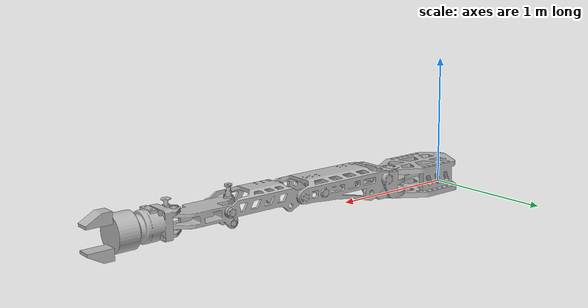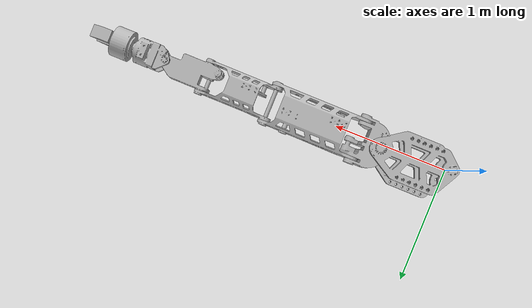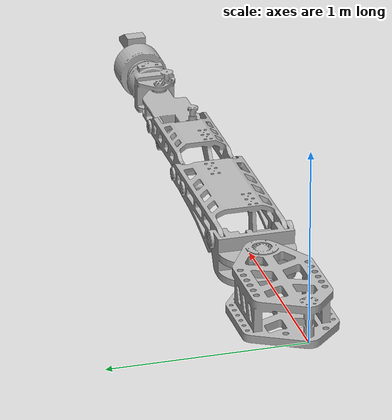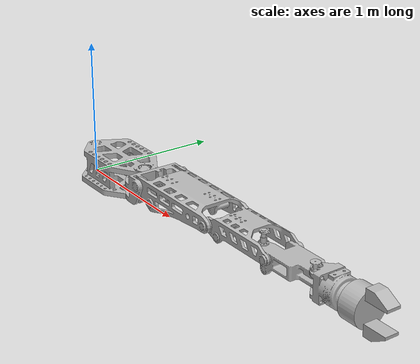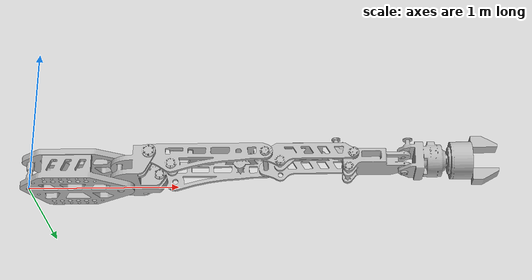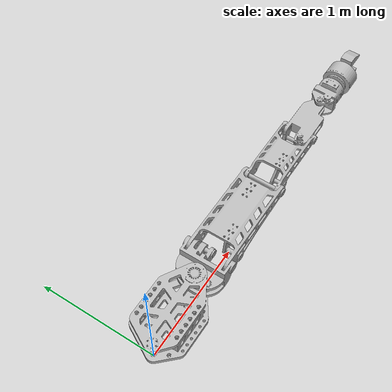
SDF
<sdf version='1.6'>

  <model name='SLAVE_ARM'>

   <joint name="fixed to ground" type="fixed">
      <parent>world</parent>
      <child>BASE_LINK</child>
    </joint>

    <link name='BASE_LINK'>
      <pose frame=''>0 0 0 0 -0 0</pose>
      <inertial>
        <pose frame=''>0.2973 0.0488 0.1042 0 -0 0</pose>
        <mass>17.574</mass>
        <inertia>
          <ixx>0.41733</ixx>
          <ixy>0.0168</ixy>
          <ixz>-0.0017</ixz>
          <iyy>0.76126</iyy>
          <iyz>0</iyz>
          <izz>0.9251</izz>
        </inertia>
      </inertial>
      <collision name='BASE_LINK_collision'>
        <pose frame=''>0 0 0 0 -0 0</pose>
        <geometry>
          <mesh>
            <scale>1 1 1</scale>
            <uri>model://SLAVE_ARM/meshes/BASE_LINK.STL</uri>
          </mesh>
        </geometry>
      </collision>
      <visual name='BASE_LINK_visual'>
        <pose frame=''>0 0 0 0 -0 0</pose>
        <geometry>
          <mesh>
            <scale>1 1 1</scale>
            <uri>model://SLAVE_ARM/meshes/BASE_LINK.STL</uri>
          </mesh>
        </geometry>
      </visual>
    </link>
    <link name='LINK1'>
      <pose frame=''>0.608 0.052 0.111 0 -0 0</pose>
      <inertial>
        <pose frame=''>0.1104 0.0137 0.0189 0 -0 0</pose>
        <mass>10.337</mass>
        <inertia>
          <ixx>0.1694</ixx>
          <ixy>0.015</ixy>
          <ixz>0.0093</ixz>
          <iyy>0.10174</iyy>
          <iyz>-0.0021</iyz>
          <izz>0.2048</izz>
        </inertia>
      </inertial>
      <collision name='LINK1_collision'>
        <pose frame=''>0 0 0 0 -0 0</pose>
        <geometry>
          <mesh>
            <scale>1 1 1</scale>
            <uri>model://SLAVE_ARM/meshes/LINK1.STL</uri>
          </mesh>
        </geometry>
      </collision>
      <visual name='LINK1_visual'>
        <pose frame=''>0 0 0 0 -0 0</pose>
        <geometry>
          <mesh>
            <scale>1 1 1</scale>
            <uri>model://SLAVE_ARM/meshes/LINK1.STL</uri>
          </mesh>
        </geometry>
      </visual>
    </link>
    <joint name='LINK1_JOINT' type='revolute'>
      <child>LINK1</child>
      <parent>BASE_LINK</parent>
      <axis>
        <xyz>0 0 1</xyz>
        <limit>
          <lower>-3.141592</lower>
          <upper>3.141592</upper>
        </limit>
        <dynamics>
          <spring_reference>0</spring_reference>
          <spring_stiffness>0</spring_stiffness>
        </dynamics>
        <use_parent_model_frame>1</use_parent_model_frame>
      </axis>
    </joint>
    <link name='LINK2'>
      <pose frame=''>0.808 0.052 0.201 0 -0 0</pose>
      <inertial>
        <pose frame=''>0.387 -0.0012 0.0217 0 -0 0</pose>
        <mass>9.5413</mass>
        <inertia>
          <ixx>0.1864</ixx>
          <ixy>0.0162</ixy>
          <ixz>0.0236</ixz>
          <iyy>0.5195</iyy>
          <iyz>0.0025</iyz>
          <izz>0.6443</izz>
        </inertia>
      </inertial>
      <collision name='LINK2_collision'>
        <pose frame=''>0 0 0 0 -0 0</pose>
        <geometry>
          <mesh>
            <scale>1 1 1</scale>
            <uri>model://SLAVE_ARM/meshes/LINK2.STL</uri>
          </mesh>
        </geometry>
      </collision>
      <visual name='LINK2_visual'>
        <pose frame=''>0 0 0 0 -0 0</pose>
        <geometry>
          <mesh>
            <scale>1 1 1</scale>
            <uri>model://SLAVE_ARM/meshes/LINK2.STL</uri>
          </mesh>
        </geometry>
      </visual>
    </link>
    <joint name='LINK2_JOINT' type='revolute'>
      <child>LINK2</child>
      <parent>LINK1</parent>
      <axis>
        <xyz>0 1 0</xyz>
        <limit>
          <lower>-3.141592</lower>
          <upper>3.141592</upper>
        </limit>
        <dynamics>
          <spring_reference>0</spring_reference>
          <spring_stiffness>0</spring_stiffness>
        </dynamics>
        <use_parent_model_frame>1</use_parent_model_frame>
      </axis>
    </joint>
    <link name='LINK3'>
      <pose frame=''>1.573 0.052 0.201 0 -0 0</pose>
      <inertial>
        <pose frame=''>0.25161 -0.0058 0.0306 0 -0 0</pose>
        <mass>4.6229</mass>
        <inertia>
          <ixx>0.064842</ixx>
          <ixy>0.0032</ixy>
          <ixz>0.0043</ixz>
          <iyy>0.1375</iyy>
          <iyz>0.0013</iyz>
          <izz>0.1805</izz>
        </inertia>
      </inertial>
      <collision name='LINK3_collision'>
        <pose frame=''>0 0 0 0 -0 0</pose>
        <geometry>
          <mesh>
            <scale>1 1 1</scale>
            <uri>model://SLAVE_ARM/meshes/LINK3.STL</uri>
          </mesh>
        </geometry>
      </collision>
      <visual name='LINK3_visual'>
        <pose frame=''>0 0 0 0 -0 0</pose>
        <geometry>
          <mesh>
            <scale>1 1 1</scale>
            <uri>model://SLAVE_ARM/meshes/LINK3.STL</uri>
          </mesh>
        </geometry>
      </visual>
    </link>
    <joint name='LINK3_JOINT' type='revolute'>
      <child>LINK3</child>
      <parent>LINK2</parent>
      <axis>
        <xyz>0 1 0</xyz>
        <limit>
          <lower>-3.141592</lower>
          <upper>3.141592</upper>
        </limit>
        <dynamics>
          <spring_reference>0</spring_reference>
          <spring_stiffness>0</spring_stiffness>
        </dynamics>
        <use_parent_model_frame>1</use_parent_model_frame>
      </axis>
    </joint>
    <link name='LINK4'>
      <pose frame=''>2.155 0.052 0.201 0 -0 0</pose>
      <inertial>
        <pose frame=''>0.0963 -0.006 -0.0134 0 -0 0</pose>
        <mass>6.0768</mass>
        <inertia>
          <ixx>0.0329</ixx>
          <ixy>0.0125</ixy>
          <ixz>0.0009</ixz>
          <iyy>0.1067</iyy>
          <iyz>-0.0011</iyz>
          <izz>0.1194</izz>
        </inertia>
      </inertial>
      <collision name='LINK4_collision'>
        <pose frame=''>0 0 0 0 -0 0</pose>
        <geometry>
          <mesh>
            <scale>1 1 1</scale>
            <uri>model://SLAVE_ARM/meshes/LINK4.STL</uri>
          </mesh>
        </geometry>
      </collision>
      <visual name='LINK4_visual'>
        <pose frame=''>0 0 0 0 -0 0</pose>
        <geometry>
          <mesh>
            <scale>1 1 1</scale>
            <uri>model://SLAVE_ARM/meshes/LINK4.STL</uri>
          </mesh>
        </geometry>
      </visual>
    </link>
    <joint name='LINK4_JOINT' type='revolute'>
      <child>LINK4</child>
      <parent>LINK3</parent>
      <axis>
        <xyz>0 1 0</xyz>
        <limit>
          <lower>-3.141592</lower>
          <upper>3.141592</upper>
        </limit>
        <dynamics>
          <spring_reference>0</spring_reference>
          <spring_stiffness>0</spring_stiffness>
        </dynamics>
        <use_parent_model_frame>1</use_parent_model_frame>
      </axis>
    </joint>
    <link name='LINK5'>
      <pose frame=''>2.495 0.052 0.191 0 -0 0</pose>
      <inertial>
        <pose frame=''>0.1513 0 0.0022 0 -0 0</pose>
        <mass>7.0927</mass>
        <inertia>
          <ixx>0.0446</ixx>
          <ixy>0.0005</ixy>
          <ixz>-0.0008</ixz>
          <iyy>0.0597</iyy>
          <iyz>-0.0004</iyz>
          <izz>0.0571</izz>
        </inertia>
      </inertial>
      <collision name='LINK5_collision'>
        <pose frame=''>0 0 0 0 -0 0</pose>
        <geometry>
          <mesh>
            <scale>1 1 1</scale>
            <uri>model://SLAVE_ARM/meshes/LINK5.STL</uri>
          </mesh>
        </geometry>
      </collision>
      <visual name='LINK5_visual'>
        <pose frame=''>0 0 0 0 -0 0</pose>
        <geometry>
          <mesh>
            <scale>1 1 1</scale>
            <uri>model://SLAVE_ARM/meshes/LINK5.STL</uri>
          </mesh>
        </geometry>
      </visual>
    </link>
    <joint name='LINK5_JOINT' type='revolute'>
      <child>LINK5</child>
      <parent>LINK4</parent>
      <axis>
        <xyz>0 0 1</xyz>
        <limit>
          <lower>-2.094</lower>
          <upper>2.094</upper>
        </limit>
        <dynamics>
          <spring_reference>0</spring_reference>
          <spring_stiffness>0</spring_stiffness>
        </dynamics>
        <use_parent_model_frame>1</use_parent_model_frame>
      </axis>
    </joint>
    <link name='LINK6'>
      <pose frame=''>2.78662 0.052 0.191 0 -0 0</pose>
      <inertial>
        <pose frame=''>0.116214 0 0 0 -0 0</pose>
        <mass>9.3631</mass>
        <inertia>
          <ixx>0.0842</ixx>
          <ixy>0</ixy>
          <ixz>0</ixz>
          <iyy>0.107887</iyy>
          <iyz>0</iyz>
          <izz>0.0827868</izz>
        </inertia>
      </inertial>
      <collision name='LINK6_collision'>
        <pose frame=''>0 0 0 0 -0 0</pose>
        <geometry>
          <mesh>
            <scale>1 1 1</scale>
            <uri>model://SLAVE_ARM/meshes/LINK6.STL</uri>
          </mesh>
        </geometry>
      </collision>
      <collision name='LINK6_fixed_joint_lump__LINK7_collision_1'>
        <pose frame=''>0.156 0 0 0 -0 0</pose>
        <geometry>
          <mesh>
            <scale>1 1 1</scale>
            <uri>model://SLAVE_ARM/meshes/LINK7.STL</uri>
          </mesh>
        </geometry>
      </collision>
      <visual name='LINK6_visual'>
        <pose frame=''>0 0 0 0 -0 0</pose>
        <geometry>
          <mesh>
            <scale>1 1 1</scale>
            <uri>model://SLAVE_ARM/meshes/LINK6.STL</uri>
          </mesh>
        </geometry>
      </visual>
      <visual name='LINK6_fixed_joint_lump__LINK7_visual_1'>
        <pose frame=''>0.156 0 0 0 -0 0</pose>
        <geometry>
          <mesh>
            <scale>1 1 1</scale>
            <uri>model://SLAVE_ARM/meshes/LINK7.STL</uri>
          </mesh>
        </geometry>
      </visual>
    </link>
    <joint name='LINK6_JOINT' type='revolute'>
      <child>LINK6</child>
      <parent>LINK5</parent>
      <axis>
        <xyz>1 0 0</xyz>
        <limit>
          <lower>-3.141592</lower>
          <upper>3.141592</upper>
        </limit>
        <dynamics>
          <spring_reference>0</spring_reference>
          <spring_stiffness>0</spring_stiffness>
        </dynamics>
        <use_parent_model_frame>1</use_parent_model_frame>
      </axis>
    </joint>
  </model>
</sdf>
